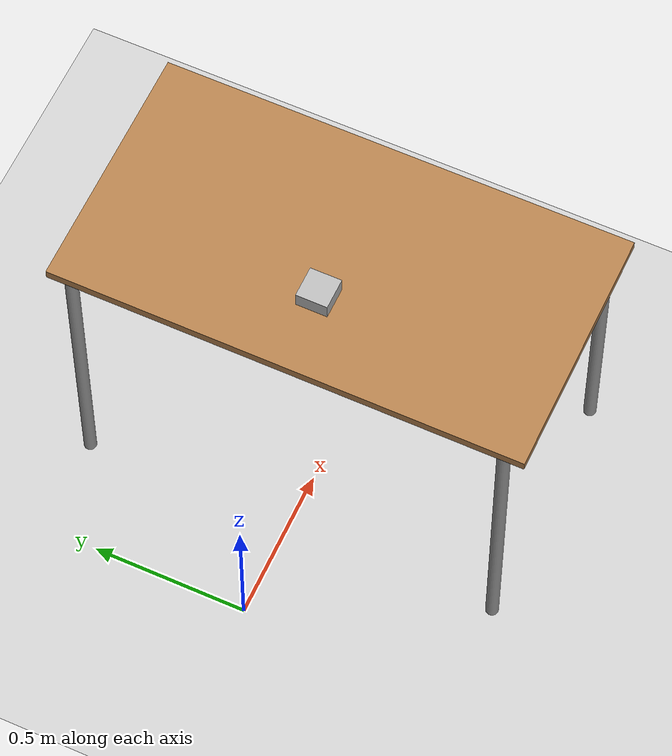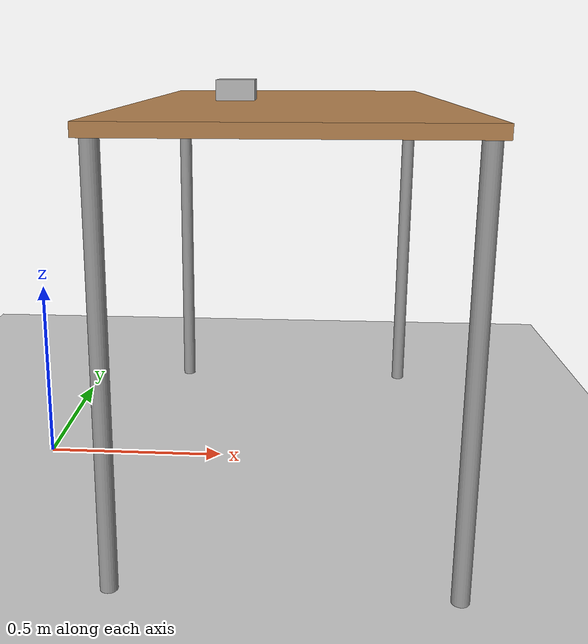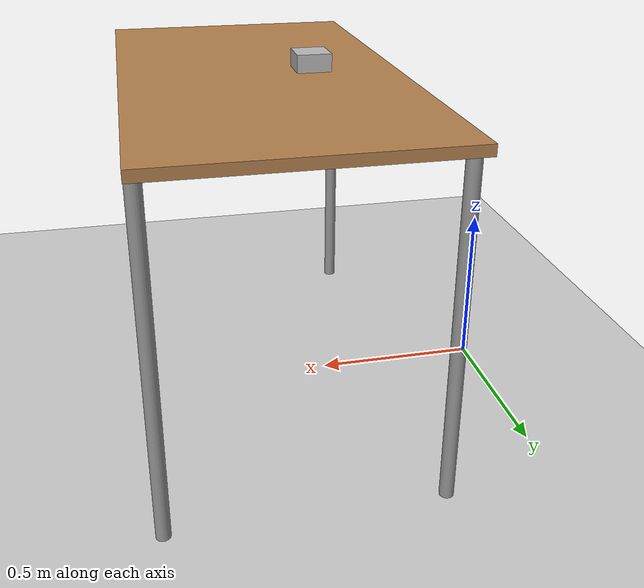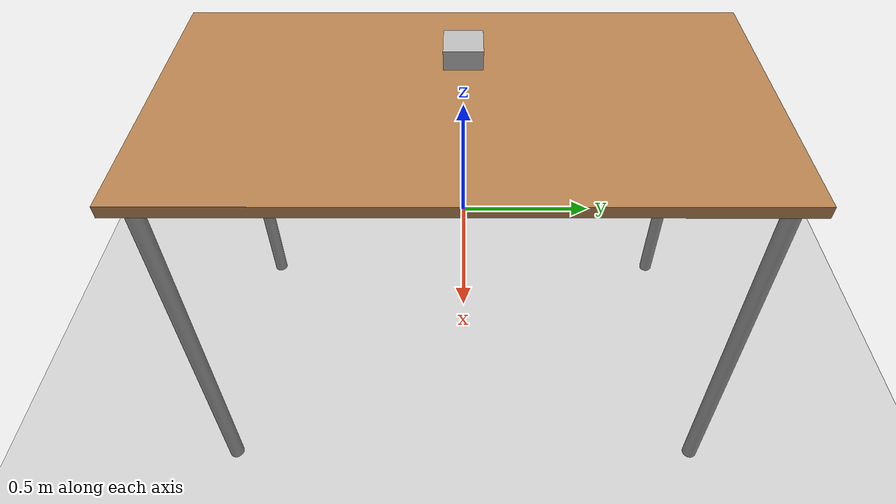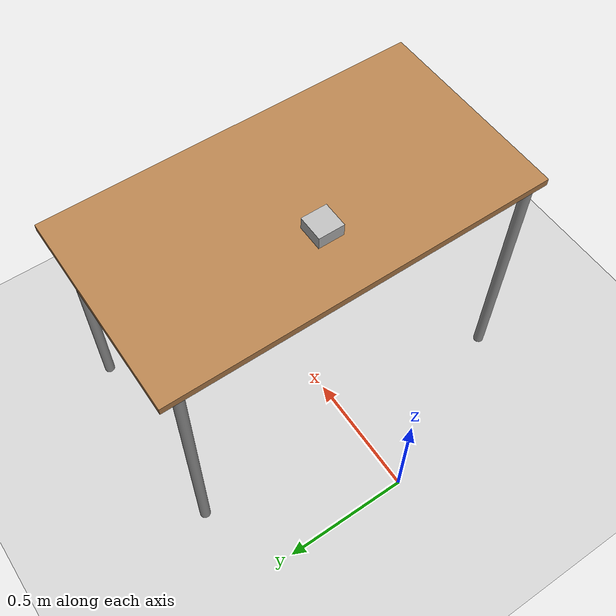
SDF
<?xml version="1.0" ?>
<sdf version="1.4">
  <world name="default">
    <include>
      <uri>model://ground_plane</uri>
    </include>
    <include>
      <uri>model://sun</uri>
    </include>
    <include>
      <uri>model://table</uri>
      <name>table</name>
      <pose>0.7 0.0 0.0 0 0 -1.5708</pose>
    </include>
    <include>
      <uri>model://marker0</uri>
      <name>marker0</name>
      <pose>0.5 0.0 1.045 0 1.5708 0</pose>
    </include>
  </world>
</sdf>

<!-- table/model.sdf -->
<sdf version="1.5">
  <model name="table">
    <static>true</static>
    <link name="link">
      <collision name="surface">
        <pose>0 0 1.0 0 0 0</pose>
        <geometry>
          <box>
            <size>1.5 0.8 0.03</size>
          </box>
        </geometry>
        <surface>
          <friction>
            <ode>
              <mu>0.6</mu>
              <mu2>0.6</mu2>
            </ode>
          </friction>
        </surface>
      </collision>
      <visual name="visual1">
        <pose>0 0 1.0 0 0 0</pose>
        <geometry>
          <box>
            <size>1.5 0.8 0.03</size>
          </box>
        </geometry>
        <material>
          <script>
            <uri>model://media/materials/scripts/gazebo.material</uri>
            <name>Gazebo/Wood</name>
          </script>
        </material>
      </visual>
      <collision name="front_left_leg">
        <pose>0.68 0.38 0.5 0 0 0</pose>
        <geometry>
          <cylinder>
            <radius>0.02</radius>
            <length>1.0</length>
          </cylinder>
        </geometry>
      </collision>
      <visual name="front_left_leg">
        <pose>0.68 0.38 0.5 0 0 0</pose>
        <geometry>
          <cylinder>
            <radius>0.02</radius>
            <length>1.0</length>
          </cylinder>
        </geometry>
        <material>
          <script>
            <uri>model://media/materials/scripts/gazebo.material</uri>
            <name>Gazebo/Grey</name>
          </script>
        </material>
      </visual>
      <collision name="front_right_leg">
        <pose>0.68 -0.38 0.5 0 0 0</pose>
        <geometry>
          <cylinder>
            <radius>0.02</radius>
            <length>1.0</length>
          </cylinder>
        </geometry>
      </collision>
      <visual name="front_right_leg">
        <pose>0.68 -0.38 0.5 0 0 0</pose>
        <geometry>
          <cylinder>
            <radius>0.02</radius>
            <length>1.0</length>
          </cylinder>
        </geometry>
        <material>
          <script>
            <uri>model://media/materials/scripts/gazebo.material</uri>
            <name>Gazebo/Grey</name>
          </script>
        </material>
      </visual>
      <collision name="back_right_leg">
        <pose>-0.68 -0.38 0.5 0 0 0</pose>
        <geometry>
          <cylinder>
            <radius>0.02</radius>
            <length>1.0</length>
          </cylinder>
        </geometry>
      </collision>
      <visual name="back_right_leg">
        <pose>-0.68 -0.38 0.5 0 0 0</pose>
        <geometry>
          <cylinder>
            <radius>0.02</radius>
            <length>1.0</length>
          </cylinder>
        </geometry>
        <material>
          <script>
            <uri>model://media/materials/scripts/gazebo.material</uri>
            <name>Gazebo/Grey</name>
          </script>
        </material>
      </visual>
      <collision name="back_left_leg">
        <pose>-0.68 0.38 0.5 0 0 0</pose>
        <geometry>
          <cylinder>
            <radius>0.02</radius>
            <length>1.0</length>
          </cylinder>
        </geometry>
      </collision>
      <visual name="back_left_leg">
        <pose>-0.68 0.38 0.5 0 0 0</pose>
        <geometry>
          <cylinder>
            <radius>0.02</radius>
            <length>1.0</length>
          </cylinder>
        </geometry>
        <material>
          <script>
            <uri>model://media/materials/scripts/gazebo.material</uri>
            <name>Gazebo/Grey</name>
          </script>
        </material>
      </visual>
    </link>
  </model>
</sdf>

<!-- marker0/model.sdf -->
<sdf version="1.6">
  <model name="Marker0">
    <static>false</static>
    <link name="link">
      <inertial>
        <inertia>
          <ixx>0.05</ixx>
          <ixy>0</ixy>
          <ixz>0</ixz>
          <iyy>0.05</iyy>
          <iyz>0</iyz>
          <izz>0.05</izz>
        </inertia>
        <mass>0.5</mass>
      </inertial>
      <collision name="collision">
        <geometry>
          <mesh>
            <uri>model://marker0/meshes/Marker0.dae</uri>
            <scale>5.2 0.2 0.2</scale>
          </mesh>
        </geometry>
      </collision>
      <visual name="visual">
        <geometry>
          <mesh>
            <uri>model://marker0/meshes/Marker0.dae</uri>
            <scale>5.2 0.2 0.2</scale>
          </mesh>
        </geometry>
      </visual>
    </link>
  </model>
</sdf>
